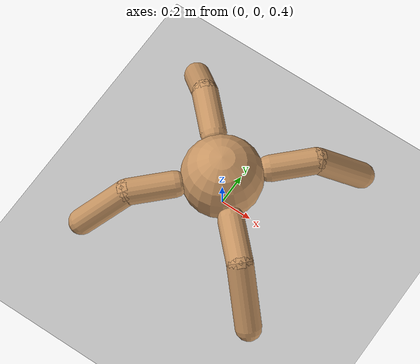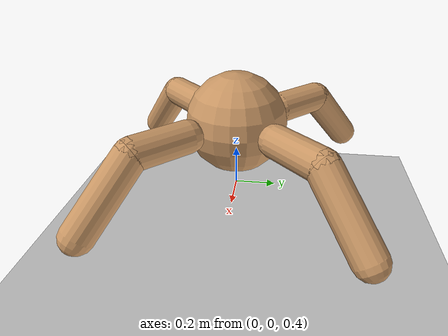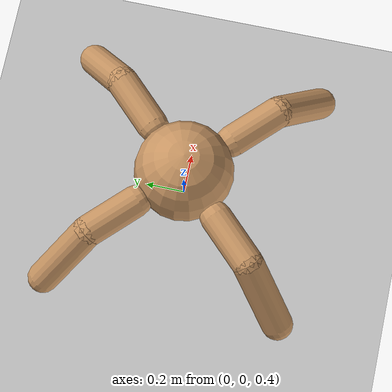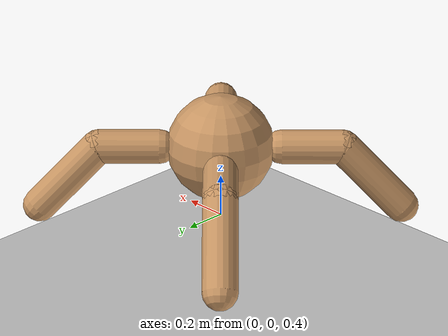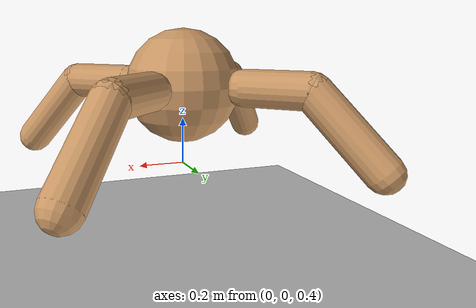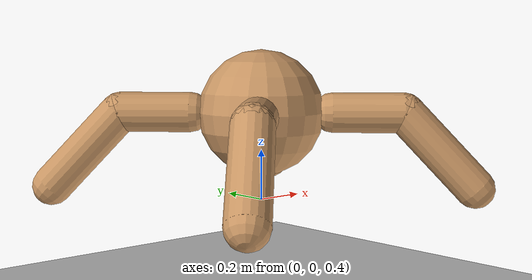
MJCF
<mujoco model="ant">

  <asset>
    <texture name="grid" type="2d" builtin="checker"
             width="512" height="512"
             rgb1="0.85 0.85 0.85" rgb2="0.7 0.7 0.7"/>
    <material name="grid_mat" texture="grid"
              texrepeat="4 4" reflectance="0.2"/>
    <texture name="skybox" type="skybox" builtin="gradient"
             width="512" height="512"
             rgb1="0.5 0.7 0.9" rgb2="0.0 0.0 0.0"/>
  </asset>

  <worldbody>
    <!-- 地面 -->
    <geom name="ground" type="plane" size="10 10 0.1"
          material="grid_mat"
          friction="1 0.005 0.0001"
          contype="1" conaffinity="1"/>

    <!-- 光源 -->
    <light name="main_light"
           pos="0 0 4" dir="0 0 -1"
           diffuse="0.8 0.8 0.8" specular="0.2 0.2 0.2"
           castshadow="true"/>
    <light name="fill_light"
           pos="1 -1 2" dir="-0.5 0.5 -1"
           diffuse="0.4 0.4 0.4" specular="0.0 0.0 0.0"
           castshadow="false"/>

    <!-- 躯干 -->
    <body name="torso" pos="0 0 0.75">
      <freejoint/>
      <geom type="sphere" size="0.25" mass="1" rgba="0.8 0.6 0.4 1"/>

      <!-- 前左腿 -->
      <body name="front_left_hip" pos="0.2 0.2 0">
        <joint name="fl_hip" type="hinge" axis="0 0 1" range="-40 40"/>
        <geom type="capsule" fromto="0 0 0 0.2 0.2 0" size="0.08" mass="0.1" rgba="0.8 0.6 0.4 1"/>
        <body name="front_left_ankle" pos="0.2 0.2 0">
          <joint name="fl_ankle" type="hinge" axis="1 1 0" range="30 100"/>
          <geom type="capsule" fromto="0 0 0 0.2 0.2 -0.3" size="0.08" mass="0.1" rgba="0.8 0.6 0.4 1"/>
        </body>
      </body>

      <!-- 前右腿 -->
      <body name="front_right_hip" pos="0.2 -0.2 0">
        <joint name="fr_hip" type="hinge" axis="0 0 1" range="-40 40"/>
        <geom type="capsule" fromto="0 0 0 0.2 -0.2 0" size="0.08" mass="0.1" rgba="0.8 0.6 0.4 1"/>
        <body name="front_right_ankle" pos="0.2 -0.2 0">
          <joint name="fr_ankle" type="hinge" axis="1 -1 0" range="30 100"/>
          <geom type="capsule" fromto="0 0 0 0.2 -0.2 -0.3" size="0.08" mass="0.1" rgba="0.8 0.6 0.4 1"/>
        </body>
      </body>

      <!-- 后左腿 -->
      <body name="back_left_hip" pos="-0.2 0.2 0">
        <joint name="bl_hip" type="hinge" axis="0 0 1" range="-40 40"/>
        <geom type="capsule" fromto="0 0 0 -0.2 0.2 0" size="0.08" mass="0.1" rgba="0.8 0.6 0.4 1"/>
        <body name="back_left_ankle" pos="-0.2 0.2 0">
          <joint name="bl_ankle" type="hinge" axis="-1 1 0" range="30 100"/>
          <geom type="capsule" fromto="0 0 0 -0.2 0.2 -0.3" size="0.08" mass="0.1" rgba="0.8 0.6 0.4 1"/>
        </body>
      </body>

      <!-- 后右腿 -->
      <body name="back_right_hip" pos="-0.2 -0.2 0">
        <joint name="br_hip" type="hinge" axis="0 0 1" range="-40 40"/>
        <geom type="capsule" fromto="0 0 0 -0.2 -0.2 0" size="0.08" mass="0.1" rgba="0.8 0.6 0.4 1"/>
        <body name="back_right_ankle" pos="-0.2 -0.2 0">
          <joint name="br_ankle" type="hinge" axis="-1 -1 0" range="30 100"/>
          <geom type="capsule" fromto="0 0 0 -0.2 -0.2 -0.3" size="0.08" mass="0.1" rgba="0.8 0.6 0.4 1"/>
        </body>
      </body>

    </body>
  </worldbody>

  <actuator>
    <motor name="fl_hip_motor"   joint="fl_hip"   gear="150" ctrlrange="-1 1" ctrllimited="true"/>
    <motor name="fl_ankle_motor" joint="fl_ankle" gear="150" ctrlrange="-1 1" ctrllimited="true"/>
    <motor name="fr_hip_motor"   joint="fr_hip"   gear="150" ctrlrange="-1 1" ctrllimited="true"/>
    <motor name="fr_ankle_motor" joint="fr_ankle" gear="150" ctrlrange="-1 1" ctrllimited="true"/>
    <motor name="bl_hip_motor"   joint="bl_hip"   gear="150" ctrlrange="-1 1" ctrllimited="true"/>
    <motor name="bl_ankle_motor" joint="bl_ankle" gear="150" ctrlrange="-1 1" ctrllimited="true"/>
    <motor name="br_hip_motor"   joint="br_hip"   gear="150" ctrlrange="-1 1" ctrllimited="true"/>
    <motor name="br_ankle_motor" joint="br_ankle" gear="150" ctrlrange="-1 1" ctrllimited="true"/>
  </actuator>

</mujoco>
